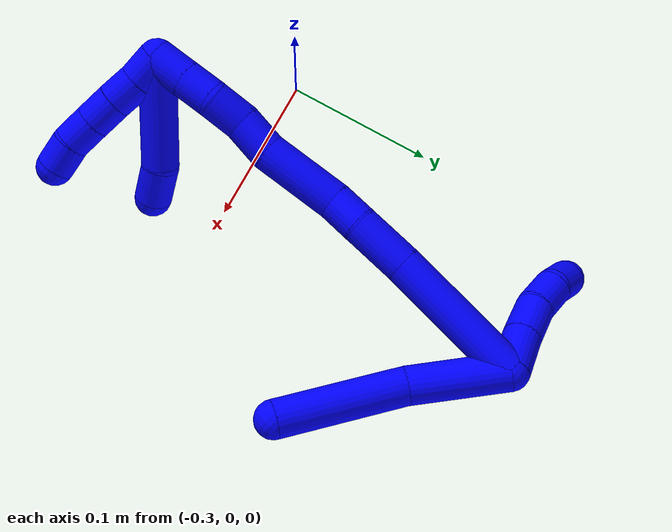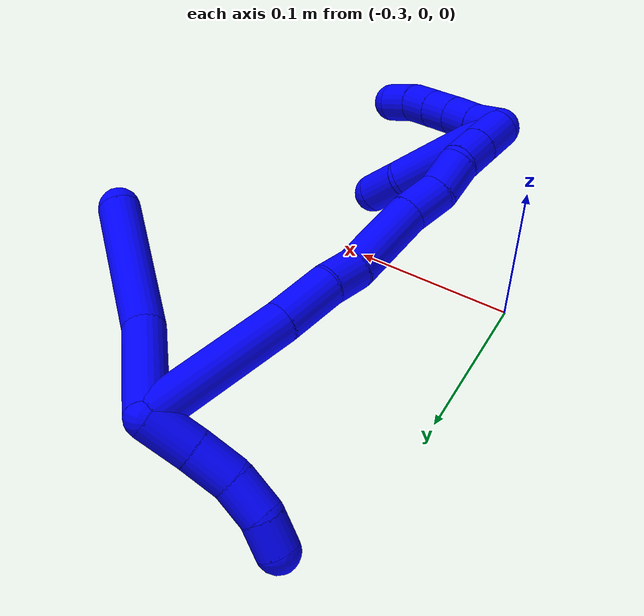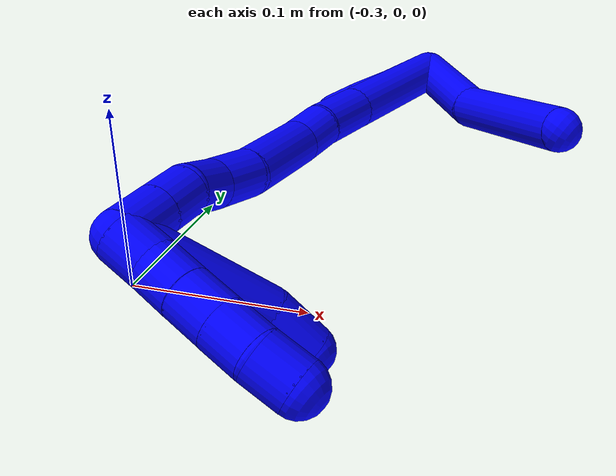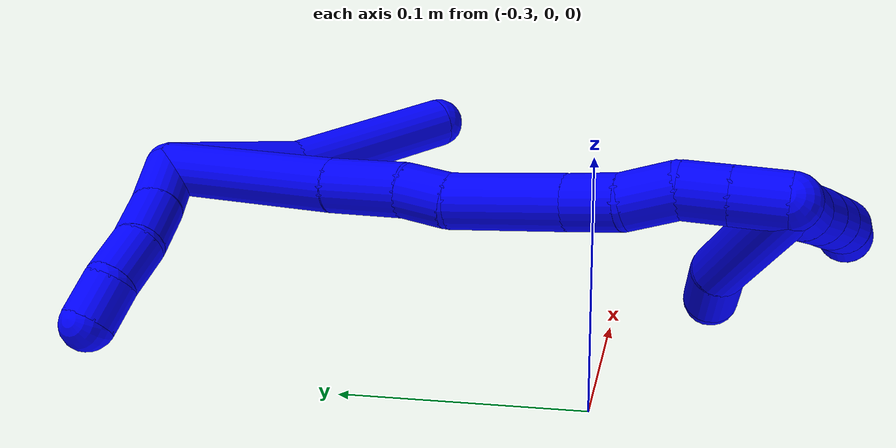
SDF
<sdf version="1.7">
 <world name="default">
  <model name="1">
   <static>0</static>
   <link name="1">
    <collision name="collision-cylinder-e_1_2_8">
     <pose>0.005035 -0.020529 -0.024422 2.44259 0.156525 0.423883</pose>
     <geometry><cylinder><radius>0.0125</radius><length>0.064598</length></cylinder></geometry>
     <surface>
      <friction><ode><mu>1.16</mu><mu2>1.16</mu2><slip1>0</slip1><slip2>0</slip2></ode></friction>
      <contact><ode><kp>1e+06</kp><kd>1</kd><max_vel>0</max_vel><min_depth>0.001</min_depth></ode></contact>
     </surface>
    </collision>
    <visual name="visual-cylinder-e_1_2_8">
     <pose>0.005035 -0.020529 -0.024422 2.44259 0.156525 0.423883</pose>
     <geometry><cylinder><radius>0.0125</radius><length>0.064598</length></cylinder></geometry>
     <material><ambient>0 0 1 1</ambient></material>
    </visual>
    <collision name="collision-cylinder-e_2_8_6">
     <pose>0.027833 -0.065414 -0.079087 2.46358 0.429019 1.10686</pose>
     <geometry><cylinder><radius>0.0125</radius><length>0.085402</length></cylinder></geometry>
     <surface>
      <friction><ode><mu>1.16</mu><mu2>1.16</mu2><slip1>0</slip1><slip2>0</slip2></ode></friction>
      <contact><ode><kp>1e+06</kp><kd>1</kd><max_vel>0</max_vel><min_depth>0.001</min_depth></ode></contact>
     </surface>
    </collision>
    <visual name="visual-cylinder-e_2_8_6">
     <pose>0.027833 -0.065414 -0.079087 2.46358 0.429019 1.10686</pose>
     <geometry><cylinder><radius>0.0125</radius><length>0.085402</length></cylinder></geometry>
     <material><ambient>0 0 1 1</ambient></material>
    </visual>
    <collision name="collision-cylinder-e_1_2_9">
     <pose>-0.012201 -0.002697 0.007627 0.33988 -0.98532 -0.183709</pose>
     <geometry><cylinder><radius>0.0125</radius><length>0.029278</length></cylinder></geometry>
     <surface>
      <friction><ode><mu>1.16</mu><mu2>1.16</mu2><slip1>0</slip1><slip2>0</slip2></ode></friction>
      <contact><ode><kp>1e+06</kp><kd>1</kd><max_vel>0</max_vel><min_depth>0.001</min_depth></ode></contact>
     </surface>
    </collision>
    <visual name="visual-cylinder-e_1_2_9">
     <pose>-0.012201 -0.002697 0.007627 0.33988 -0.98532 -0.183709</pose>
     <geometry><cylinder><radius>0.0125</radius><length>0.029278</length></cylinder></geometry>
     <material><ambient>0 0 1 1</ambient></material>
    </visual>
    <collision name="collision-cylinder-e_2_9_10">
     <pose>-0.034815 -0.00705 0.022614 0.221309 -0.943823 -0.113292</pose>
     <geometry><cylinder><radius>0.0125</radius><length>0.025718</length></cylinder></geometry>
     <surface>
      <friction><ode><mu>1.16</mu><mu2>1.16</mu2><slip1>0</slip1><slip2>0</slip2></ode></friction>
      <contact><ode><kp>1e+06</kp><kd>1</kd><max_vel>0</max_vel><min_depth>0.001</min_depth></ode></contact>
     </surface>
    </collision>
    <visual name="visual-cylinder-e_2_9_10">
     <pose>-0.034815 -0.00705 0.022614 0.221309 -0.943823 -0.113292</pose>
     <geometry><cylinder><radius>0.0125</radius><length>0.025718</length></cylinder></geometry>
     <material><ambient>0 0 1 1</ambient></material>
    </visual>
    <collision name="collision-cylinder-e_3_10_11">
     <pose>-0.055125 -0.007446 0.036558 -0.189076 -0.975412 0.10051</pose>
     <geometry><cylinder><radius>0.0125</radius><length>0.023905</length></cylinder></geometry>
     <surface>
      <friction><ode><mu>1.16</mu><mu2>1.16</mu2><slip1>0</slip1><slip2>0</slip2></ode></friction>
      <contact><ode><kp>1e+06</kp><kd>1</kd><max_vel>0</max_vel><min_depth>0.001</min_depth></ode></contact>
     </surface>
    </collision>
    <visual name="visual-cylinder-e_3_10_11">
     <pose>-0.055125 -0.007446 0.036558 -0.189076 -0.975412 0.10051</pose>
     <geometry><cylinder><radius>0.0125</radius><length>0.023905</length></cylinder></geometry>
     <material><ambient>0 0 1 1</ambient></material>
    </visual>
    <collision name="collision-cylinder-e_4_11_5">
     <pose>-0.074678 -0.003246 0.046203 -0.765155 -1.15675 0.513807</pose>
     <geometry><cylinder><radius>0.0125</radius><length>0.021098</length></cylinder></geometry>
     <surface>
      <friction><ode><mu>1.16</mu><mu2>1.16</mu2><slip1>0</slip1><slip2>0</slip2></ode></friction>
      <contact><ode><kp>1e+06</kp><kd>1</kd><max_vel>0</max_vel><min_depth>0.001</min_depth></ode></contact>
     </surface>
    </collision>
    <visual name="visual-cylinder-e_4_11_5">
     <pose>-0.074678 -0.003246 0.046203 -0.765155 -1.15675 0.513807</pose>
     <geometry><cylinder><radius>0.0125</radius><length>0.021098</length></cylinder></geometry>
     <material><ambient>0 0 1 1</ambient></material>
    </visual>
    <collision name="collision-cylinder-e_1_2_12">
     <pose>-0.009129 -0.045797 -0.000231 1.57585 -0.196749 -0.197738</pose>
     <geometry><cylinder><radius>0.0125</radius><length>0.093396</length></cylinder></geometry>
     <surface>
      <friction><ode><mu>1.16</mu><mu2>1.16</mu2><slip1>0</slip1><slip2>0</slip2></ode></friction>
      <contact><ode><kp>1e+06</kp><kd>1</kd><max_vel>0</max_vel><min_depth>0.001</min_depth></ode></contact>
     </surface>
    </collision>
    <visual name="visual-cylinder-e_1_2_12">
     <pose>-0.009129 -0.045797 -0.000231 1.57585 -0.196749 -0.197738</pose>
     <geometry><cylinder><radius>0.0125</radius><length>0.093396</length></cylinder></geometry>
     <material><ambient>0 0 1 1</ambient></material>
    </visual>
    <collision name="collision-cylinder-e_2_12_13">
     <pose>-0.021076 -0.109925 -0.001091 1.60505 -0.152502 -0.157796</pose>
     <geometry><cylinder><radius>0.0125</radius><length>0.037116</length></cylinder></geometry>
     <surface>
      <friction><ode><mu>1.16</mu><mu2>1.16</mu2><slip1>0</slip1><slip2>0</slip2></ode></friction>
      <contact><ode><kp>1e+06</kp><kd>1</kd><max_vel>0</max_vel><min_depth>0.001</min_depth></ode></contact>
     </surface>
    </collision>
    <visual name="visual-cylinder-e_2_12_13">
     <pose>-0.021076 -0.109925 -0.001091 1.60505 -0.152502 -0.157796</pose>
     <geometry><cylinder><radius>0.0125</radius><length>0.037116</length></cylinder></geometry>
     <material><ambient>0 0 1 1</ambient></material>
    </visual>
    <collision name="collision-cylinder-e_3_13_14">
     <pose>-0.027256 -0.138854 -0.002511 1.64544 -0.306241 -0.329585</pose>
     <geometry><cylinder><radius>0.0125</radius><length>0.022291</length></cylinder></geometry>
     <surface>
      <friction><ode><mu>1.16</mu><mu2>1.16</mu2><slip1>0</slip1><slip2>0</slip2></ode></friction>
      <contact><ode><kp>1e+06</kp><kd>1</kd><max_vel>0</max_vel><min_depth>0.001</min_depth></ode></contact>
     </surface>
    </collision>
    <visual name="visual-cylinder-e_3_13_14">
     <pose>-0.027256 -0.138854 -0.002511 1.64544 -0.306241 -0.329585</pose>
     <geometry><cylinder><radius>0.0125</radius><length>0.022291</length></cylinder></geometry>
     <material><ambient>0 0 1 1</ambient></material>
    </visual>
    <collision name="collision-cylinder-e_4_14_15">
     <pose>-0.032706 -0.17571 -0.006518 1.69259 -0.078862 -0.08909</pose>
     <geometry><cylinder><radius>0.0125</radius><length>0.053074</length></cylinder></geometry>
     <surface>
      <friction><ode><mu>1.16</mu><mu2>1.16</mu2><slip1>0</slip1><slip2>0</slip2></ode></friction>
      <contact><ode><kp>1e+06</kp><kd>1</kd><max_vel>0</max_vel><min_depth>0.001</min_depth></ode></contact>
     </surface>
    </collision>
    <visual name="visual-cylinder-e_4_14_15">
     <pose>-0.032706 -0.17571 -0.006518 1.69259 -0.078862 -0.08909</pose>
     <geometry><cylinder><radius>0.0125</radius><length>0.053074</length></cylinder></geometry>
     <material><ambient>0 0 1 1</ambient></material>
    </visual>
    <collision name="collision-cylinder-e_5_15_16">
     <pose>-0.036213 -0.214336 -0.008657 1.48412 -0.113587 -0.104163</pose>
     <geometry><cylinder><radius>0.0125</radius><length>0.024988</length></cylinder></geometry>
     <surface>
      <friction><ode><mu>1.16</mu><mu2>1.16</mu2><slip1>0</slip1><slip2>0</slip2></ode></friction>
      <contact><ode><kp>1e+06</kp><kd>1</kd><max_vel>0</max_vel><min_depth>0.001</min_depth></ode></contact>
     </surface>
    </collision>
    <visual name="visual-cylinder-e_5_15_16">
     <pose>-0.036213 -0.214336 -0.008657 1.48412 -0.113587 -0.104163</pose>
     <geometry><cylinder><radius>0.0125</radius><length>0.024988</length></cylinder></geometry>
     <material><ambient>0 0 1 1</ambient></material>
    </visual>
    <collision name="collision-cylinder-e_6_16_17">
     <pose>-0.036055 -0.238555 -0.00808 1.61277 0.131967 0.137609</pose>
     <geometry><cylinder><radius>0.0125</radius><length>0.023934</length></cylinder></geometry>
     <surface>
      <friction><ode><mu>1.16</mu><mu2>1.16</mu2><slip1>0</slip1><slip2>0</slip2></ode></friction>
      <contact><ode><kp>1e+06</kp><kd>1</kd><max_vel>0</max_vel><min_depth>0.001</min_depth></ode></contact>
     </surface>
    </collision>
    <visual name="visual-cylinder-e_6_16_17">
     <pose>-0.036055 -0.238555 -0.00808 1.61277 0.131967 0.137609</pose>
     <geometry><cylinder><radius>0.0125</radius><length>0.023934</length></cylinder></geometry>
     <material><ambient>0 0 1 1</ambient></material>
    </visual>
    <collision name="collision-cylinder-e_7_17_18">
     <pose>-0.036296 -0.260661 -0.010107 1.71884 -0.173457 -0.201069</pose>
     <geometry><cylinder><radius>0.0125</radius><length>0.021049</length></cylinder></geometry>
     <surface>
      <friction><ode><mu>1.16</mu><mu2>1.16</mu2><slip1>0</slip1><slip2>0</slip2></ode></friction>
      <contact><ode><kp>1e+06</kp><kd>1</kd><max_vel>0</max_vel><min_depth>0.001</min_depth></ode></contact>
     </surface>
    </collision>
    <visual name="visual-cylinder-e_7_17_18">
     <pose>-0.036296 -0.260661 -0.010107 1.71884 -0.173457 -0.201069</pose>
     <geometry><cylinder><radius>0.0125</radius><length>0.021049</length></cylinder></geometry>
     <material><ambient>0 0 1 1</ambient></material>
    </visual>
    <collision name="collision-cylinder-e_8_18_1">
     <pose>-0.040218 -0.282679 -0.013361 1.71638 -0.175263 -0.202658</pose>
     <geometry><cylinder><radius>0.0125</radius><length>0.024151</length></cylinder></geometry>
     <surface>
      <friction><ode><mu>1.16</mu><mu2>1.16</mu2><slip1>0</slip1><slip2>0</slip2></ode></friction>
      <contact><ode><kp>1e+06</kp><kd>1</kd><max_vel>0</max_vel><min_depth>0.001</min_depth></ode></contact>
     </surface>
    </collision>
    <visual name="visual-cylinder-e_8_18_1">
     <pose>-0.040218 -0.282679 -0.013361 1.71638 -0.175263 -0.202658</pose>
     <geometry><cylinder><radius>0.0125</radius><length>0.024151</length></cylinder></geometry>
     <material><ambient>0 0 1 1</ambient></material>
    </visual>
    <collision name="collision-cylinder-e_1_1_19">
     <pose>-0.041793 -0.294615 -0.02507 3.12449 0.053098 2.5184</pose>
     <geometry><cylinder><radius>0.0125</radius><length>0.02</length></cylinder></geometry>
     <surface>
      <friction><ode><mu>1.16</mu><mu2>1.16</mu2><slip1>0</slip1><slip2>0</slip2></ode></friction>
      <contact><ode><kp>1e+06</kp><kd>1</kd><max_vel>0</max_vel><min_depth>0.001</min_depth></ode></contact>
     </surface>
    </collision>
    <visual name="visual-cylinder-e_1_1_19">
     <pose>-0.041793 -0.294615 -0.02507 3.12449 0.053098 2.5184</pose>
     <geometry><cylinder><radius>0.0125</radius><length>0.02</length></cylinder></geometry>
     <material><ambient>0 0 1 1</ambient></material>
    </visual>
    <collision name="collision-cylinder-e_2_19_20">
     <pose>-0.040083 -0.296115 -0.044896 3.00735 0.118241 1.44386</pose>
     <geometry><cylinder><radius>0.0125</radius><length>0.02</length></cylinder></geometry>
     <surface>
      <friction><ode><mu>1.16</mu><mu2>1.16</mu2><slip1>0</slip1><slip2>0</slip2></ode></friction>
      <contact><ode><kp>1e+06</kp><kd>1</kd><max_vel>0</max_vel><min_depth>0.001</min_depth></ode></contact>
     </surface>
    </collision>
    <visual name="visual-cylinder-e_2_19_20">
     <pose>-0.040083 -0.296115 -0.044896 3.00735 0.118241 1.44386</pose>
     <geometry><cylinder><radius>0.0125</radius><length>0.02</length></cylinder></geometry>
     <material><ambient>0 0 1 1</ambient></material>
    </visual>
    <collision name="collision-cylinder-e_3_20_21">
     <pose>-0.037855 -0.298445 -0.064631 3.04079 0.105003 1.61165</pose>
     <geometry><cylinder><radius>0.0125</radius><length>0.02</length></cylinder></geometry>
     <surface>
      <friction><ode><mu>1.16</mu><mu2>1.16</mu2><slip1>0</slip1><slip2>0</slip2></ode></friction>
      <contact><ode><kp>1e+06</kp><kd>1</kd><max_vel>0</max_vel><min_depth>0.001</min_depth></ode></contact>
     </surface>
    </collision>
    <visual name="visual-cylinder-e_3_20_21">
     <pose>-0.037855 -0.298445 -0.064631 3.04079 0.105003 1.61165</pose>
     <geometry><cylinder><radius>0.0125</radius><length>0.02</length></cylinder></geometry>
     <material><ambient>0 0 1 1</ambient></material>
    </visual>
    <collision name="collision-cylinder-e_4_21_22">
     <pose>-0.035694 -0.300362 -0.084421 3.04923 0.111543 1.7587</pose>
     <geometry><cylinder><radius>0.0125</radius><length>0.02</length></cylinder></geometry>
     <surface>
      <friction><ode><mu>1.16</mu><mu2>1.16</mu2><slip1>0</slip1><slip2>0</slip2></ode></friction>
      <contact><ode><kp>1e+06</kp><kd>1</kd><max_vel>0</max_vel><min_depth>0.001</min_depth></ode></contact>
     </surface>
    </collision>
    <visual name="visual-cylinder-e_4_21_22">
     <pose>-0.035694 -0.300362 -0.084421 3.04923 0.111543 1.7587</pose>
     <geometry><cylinder><radius>0.0125</radius><length>0.02</length></cylinder></geometry>
     <material><ambient>0 0 1 1</ambient></material>
    </visual>
    <collision name="collision-cylinder-e_5_22_4">
     <pose>-0.034421 -0.300194 -0.104256 -3.03291 0.016013 -0.292292</pose>
     <geometry><cylinder><radius>0.0125</radius><length>0.02</length></cylinder></geometry>
     <surface>
      <friction><ode><mu>1.16</mu><mu2>1.16</mu2><slip1>0</slip1><slip2>0</slip2></ode></friction>
      <contact><ode><kp>1e+06</kp><kd>1</kd><max_vel>0</max_vel><min_depth>0.001</min_depth></ode></contact>
     </surface>
    </collision>
    <visual name="visual-cylinder-e_5_22_4">
     <pose>-0.034421 -0.300194 -0.104256 -3.03291 0.016013 -0.292292</pose>
     <geometry><cylinder><radius>0.0125</radius><length>0.02</length></cylinder></geometry>
     <material><ambient>0 0 1 1</ambient></material>
    </visual>
    <collision name="collision-cylinder-e_1_1_23">
     <pose>-0.048942 -0.271916 -0.043611 -2.47312 -0.180096 0.508752</pose>
     <geometry><cylinder><radius>0.0125</radius><length>0.073891</length></cylinder></geometry>
     <surface>
      <friction><ode><mu>1.16</mu><mu2>1.16</mu2><slip1>0</slip1><slip2>0</slip2></ode></friction>
      <contact><ode><kp>1e+06</kp><kd>1</kd><max_vel>0</max_vel><min_depth>0.001</min_depth></ode></contact>
     </surface>
    </collision>
    <visual name="visual-cylinder-e_1_1_23">
     <pose>-0.048942 -0.271916 -0.043611 -2.47312 -0.180096 0.508752</pose>
     <geometry><cylinder><radius>0.0125</radius><length>0.073891</length></cylinder></geometry>
     <material><ambient>0 0 1 1</ambient></material>
    </visual>
    <collision name="collision-cylinder-e_2_23_3">
     <pose>-0.059405 -0.244515 -0.08362 -2.74032 -0.299033 1.27505</pose>
     <geometry><cylinder><radius>0.0125</radius><length>0.026109</length></cylinder></geometry>
     <surface>
      <friction><ode><mu>1.16</mu><mu2>1.16</mu2><slip1>0</slip1><slip2>0</slip2></ode></friction>
      <contact><ode><kp>1e+06</kp><kd>1</kd><max_vel>0</max_vel><min_depth>0.001</min_depth></ode></contact>
     </surface>
    </collision>
    <visual name="visual-cylinder-e_2_23_3">
     <pose>-0.059405 -0.244515 -0.08362 -2.74032 -0.299033 1.27505</pose>
     <geometry><cylinder><radius>0.0125</radius><length>0.026109</length></cylinder></geometry>
     <material><ambient>0 0 1 1</ambient></material>
    </visual>
    <collision name="collision-sphere-3">
     <pose>-0.063251 -0.239642 -0.095104 0 -0 0</pose>
     <geometry><sphere><radius>0.0125</radius></sphere></geometry>
     <surface>
      <friction><ode><mu>1.16</mu><mu2>1.16</mu2><slip1>0</slip1><slip2>0</slip2></ode></friction>
      <contact><ode><kp>1e+06</kp><kd>1</kd><max_vel>0</max_vel><min_depth>0.001</min_depth></ode></contact>
     </surface>
    </collision>
    <visual name="visual-sphere-3">
     <pose>-0.063251 -0.239642 -0.095104 0 -0 0</pose>
     <geometry><sphere><radius>0.0125</radius></sphere></geometry>
     <material><ambient>0 0 1 1</ambient></material>
    </visual>
    <collision name="collision-sphere-23">
     <pose>-0.05556 -0.249388 -0.072135 0 -0 0</pose>
     <geometry><sphere><radius>0.0125</radius></sphere></geometry>
     <surface>
      <friction><ode><mu>1.16</mu><mu2>1.16</mu2><slip1>0</slip1><slip2>0</slip2></ode></friction>
      <contact><ode><kp>1e+06</kp><kd>1</kd><max_vel>0</max_vel><min_depth>0.001</min_depth></ode></contact>
     </surface>
    </collision>
    <visual name="visual-sphere-23">
     <pose>-0.05556 -0.249388 -0.072135 0 -0 0</pose>
     <geometry><sphere><radius>0.0125</radius></sphere></geometry>
     <material><ambient>0 0 1 1</ambient></material>
    </visual>
    <collision name="collision-sphere-4">
     <pose>-0.034261 -0.29911 -0.114196 0 -0 0</pose>
     <geometry><sphere><radius>0.0125</radius></sphere></geometry>
     <surface>
      <friction><ode><mu>1.16</mu><mu2>1.16</mu2><slip1>0</slip1><slip2>0</slip2></ode></friction>
      <contact><ode><kp>1e+06</kp><kd>1</kd><max_vel>0</max_vel><min_depth>0.001</min_depth></ode></contact>
     </surface>
    </collision>
    <visual name="visual-sphere-4">
     <pose>-0.034261 -0.29911 -0.114196 0 -0 0</pose>
     <geometry><sphere><radius>0.0125</radius></sphere></geometry>
     <material><ambient>0 0 1 1</ambient></material>
    </visual>
    <collision name="collision-sphere-22">
     <pose>-0.034581 -0.301279 -0.094316 0 -0 0</pose>
     <geometry><sphere><radius>0.0125</radius></sphere></geometry>
     <surface>
      <friction><ode><mu>1.16</mu><mu2>1.16</mu2><slip1>0</slip1><slip2>0</slip2></ode></friction>
      <contact><ode><kp>1e+06</kp><kd>1</kd><max_vel>0</max_vel><min_depth>0.001</min_depth></ode></contact>
     </surface>
    </collision>
    <visual name="visual-sphere-22">
     <pose>-0.034581 -0.301279 -0.094316 0 -0 0</pose>
     <geometry><sphere><radius>0.0125</radius></sphere></geometry>
     <material><ambient>0 0 1 1</ambient></material>
    </visual>
    <collision name="collision-sphere-21">
     <pose>-0.036807 -0.299445 -0.074525 0 -0 0</pose>
     <geometry><sphere><radius>0.0125</radius></sphere></geometry>
     <surface>
      <friction><ode><mu>1.16</mu><mu2>1.16</mu2><slip1>0</slip1><slip2>0</slip2></ode></friction>
      <contact><ode><kp>1e+06</kp><kd>1</kd><max_vel>0</max_vel><min_depth>0.001</min_depth></ode></contact>
     </surface>
    </collision>
    <visual name="visual-sphere-21">
     <pose>-0.036807 -0.299445 -0.074525 0 -0 0</pose>
     <geometry><sphere><radius>0.0125</radius></sphere></geometry>
     <material><ambient>0 0 1 1</ambient></material>
    </visual>
    <collision name="collision-sphere-20">
     <pose>-0.038903 -0.297444 -0.054737 0 -0 0</pose>
     <geometry><sphere><radius>0.0125</radius></sphere></geometry>
     <surface>
      <friction><ode><mu>1.16</mu><mu2>1.16</mu2><slip1>0</slip1><slip2>0</slip2></ode></friction>
      <contact><ode><kp>1e+06</kp><kd>1</kd><max_vel>0</max_vel><min_depth>0.001</min_depth></ode></contact>
     </surface>
    </collision>
    <visual name="visual-sphere-20">
     <pose>-0.038903 -0.297444 -0.054737 0 -0 0</pose>
     <geometry><sphere><radius>0.0125</radius></sphere></geometry>
     <material><ambient>0 0 1 1</ambient></material>
    </visual>
    <collision name="collision-sphere-11">
     <pose>-0.065021 -0.006186 0.043142 0 -0 0</pose>
     <geometry><sphere><radius>0.0125</radius></sphere></geometry>
     <surface>
      <friction><ode><mu>1.16</mu><mu2>1.16</mu2><slip1>0</slip1><slip2>0</slip2></ode></friction>
      <contact><ode><kp>1e+06</kp><kd>1</kd><max_vel>0</max_vel><min_depth>0.001</min_depth></ode></contact>
     </surface>
    </collision>
    <visual name="visual-sphere-11">
     <pose>-0.065021 -0.006186 0.043142 0 -0 0</pose>
     <geometry><sphere><radius>0.0125</radius></sphere></geometry>
     <material><ambient>0 0 1 1</ambient></material>
    </visual>
    <collision name="collision-sphere-10">
     <pose>-0.045228 -0.008706 0.029974 0 -0 0</pose>
     <geometry><sphere><radius>0.0125</radius></sphere></geometry>
     <surface>
      <friction><ode><mu>1.16</mu><mu2>1.16</mu2><slip1>0</slip1><slip2>0</slip2></ode></friction>
      <contact><ode><kp>1e+06</kp><kd>1</kd><max_vel>0</max_vel><min_depth>0.001</min_depth></ode></contact>
     </surface>
    </collision>
    <visual name="visual-sphere-10">
     <pose>-0.045228 -0.008706 0.029974 0 -0 0</pose>
     <geometry><sphere><radius>0.0125</radius></sphere></geometry>
     <material><ambient>0 0 1 1</ambient></material>
    </visual>
    <collision name="collision-sphere-6">
     <pose>0.045595 -0.089771 -0.109329 0 -0 0</pose>
     <geometry><sphere><radius>0.0125</radius></sphere></geometry>
     <surface>
      <friction><ode><mu>1.16</mu><mu2>1.16</mu2><slip1>0</slip1><slip2>0</slip2></ode></friction>
      <contact><ode><kp>1e+06</kp><kd>1</kd><max_vel>0</max_vel><min_depth>0.001</min_depth></ode></contact>
     </surface>
    </collision>
    <visual name="visual-sphere-6">
     <pose>0.045595 -0.089771 -0.109329 0 -0 0</pose>
     <geometry><sphere><radius>0.0125</radius></sphere></geometry>
     <material><ambient>0 0 1 1</ambient></material>
    </visual>
    <collision name="collision-sphere-9">
     <pose>-0.024402 -0.005394 0.015254 0 -0 0</pose>
     <geometry><sphere><radius>0.0125</radius></sphere></geometry>
     <surface>
      <friction><ode><mu>1.16</mu><mu2>1.16</mu2><slip1>0</slip1><slip2>0</slip2></ode></friction>
      <contact><ode><kp>1e+06</kp><kd>1</kd><max_vel>0</max_vel><min_depth>0.001</min_depth></ode></contact>
     </surface>
    </collision>
    <visual name="visual-sphere-9">
     <pose>-0.024402 -0.005394 0.015254 0 -0 0</pose>
     <geometry><sphere><radius>0.0125</radius></sphere></geometry>
     <material><ambient>0 0 1 1</ambient></material>
    </visual>
    <collision name="collision-sphere-2">
     <geometry><sphere><radius>0.0125</radius></sphere></geometry>
     <surface>
      <friction><ode><mu>1.16</mu><mu2>1.16</mu2><slip1>0</slip1><slip2>0</slip2></ode></friction>
      <contact><ode><kp>1e+06</kp><kd>1</kd><max_vel>0</max_vel><min_depth>0.001</min_depth></ode></contact>
     </surface>
    </collision>
    <visual name="visual-sphere-2">
     <geometry><sphere><radius>0.0125</radius></sphere></geometry>
     <material><ambient>0 0 1 1</ambient></material>
    </visual>
    <collision name="collision-sphere-19">
     <pose>-0.041263 -0.294786 -0.035055 0 -0 0</pose>
     <geometry><sphere><radius>0.0125</radius></sphere></geometry>
     <surface>
      <friction><ode><mu>1.16</mu><mu2>1.16</mu2><slip1>0</slip1><slip2>0</slip2></ode></friction>
      <contact><ode><kp>1e+06</kp><kd>1</kd><max_vel>0</max_vel><min_depth>0.001</min_depth></ode></contact>
     </surface>
    </collision>
    <visual name="visual-sphere-19">
     <pose>-0.041263 -0.294786 -0.035055 0 -0 0</pose>
     <geometry><sphere><radius>0.0125</radius></sphere></geometry>
     <material><ambient>0 0 1 1</ambient></material>
    </visual>
    <collision name="collision-sphere-8">
     <pose>0.01007 -0.041058 -0.048844 0 -0 0</pose>
     <geometry><sphere><radius>0.0125</radius></sphere></geometry>
     <surface>
      <friction><ode><mu>1.16</mu><mu2>1.16</mu2><slip1>0</slip1><slip2>0</slip2></ode></friction>
      <contact><ode><kp>1e+06</kp><kd>1</kd><max_vel>0</max_vel><min_depth>0.001</min_depth></ode></contact>
     </surface>
    </collision>
    <visual name="visual-sphere-8">
     <pose>0.01007 -0.041058 -0.048844 0 -0 0</pose>
     <geometry><sphere><radius>0.0125</radius></sphere></geometry>
     <material><ambient>0 0 1 1</ambient></material>
    </visual>
    <collision name="collision-sphere-5">
     <pose>-0.084336 -0.000307 0.049264 0 -0 0</pose>
     <geometry><sphere><radius>0.0125</radius></sphere></geometry>
     <surface>
      <friction><ode><mu>1.16</mu><mu2>1.16</mu2><slip1>0</slip1><slip2>0</slip2></ode></friction>
      <contact><ode><kp>1e+06</kp><kd>1</kd><max_vel>0</max_vel><min_depth>0.001</min_depth></ode></contact>
     </surface>
    </collision>
    <visual name="visual-sphere-5">
     <pose>-0.084336 -0.000307 0.049264 0 -0 0</pose>
     <geometry><sphere><radius>0.0125</radius></sphere></geometry>
     <material><ambient>0 0 1 1</ambient></material>
    </visual>
    <collision name="collision-sphere-12">
     <pose>-0.018257 -0.091593 -0.000462 0 -0 0</pose>
     <geometry><sphere><radius>0.0125</radius></sphere></geometry>
     <surface>
      <friction><ode><mu>1.16</mu><mu2>1.16</mu2><slip1>0</slip1><slip2>0</slip2></ode></friction>
      <contact><ode><kp>1e+06</kp><kd>1</kd><max_vel>0</max_vel><min_depth>0.001</min_depth></ode></contact>
     </surface>
    </collision>
    <visual name="visual-sphere-12">
     <pose>-0.018257 -0.091593 -0.000462 0 -0 0</pose>
     <geometry><sphere><radius>0.0125</radius></sphere></geometry>
     <material><ambient>0 0 1 1</ambient></material>
    </visual>
    <collision name="collision-sphere-13">
     <pose>-0.023896 -0.128257 -0.001719 0 -0 0</pose>
     <geometry><sphere><radius>0.0125</radius></sphere></geometry>
     <surface>
      <friction><ode><mu>1.16</mu><mu2>1.16</mu2><slip1>0</slip1><slip2>0</slip2></ode></friction>
      <contact><ode><kp>1e+06</kp><kd>1</kd><max_vel>0</max_vel><min_depth>0.001</min_depth></ode></contact>
     </surface>
    </collision>
    <visual name="visual-sphere-13">
     <pose>-0.023896 -0.128257 -0.001719 0 -0 0</pose>
     <geometry><sphere><radius>0.0125</radius></sphere></geometry>
     <material><ambient>0 0 1 1</ambient></material>
    </visual>
    <collision name="collision-sphere-14">
     <pose>-0.030616 -0.149451 -0.003304 0 -0 0</pose>
     <geometry><sphere><radius>0.0125</radius></sphere></geometry>
     <surface>
      <friction><ode><mu>1.16</mu><mu2>1.16</mu2><slip1>0</slip1><slip2>0</slip2></ode></friction>
      <contact><ode><kp>1e+06</kp><kd>1</kd><max_vel>0</max_vel><min_depth>0.001</min_depth></ode></contact>
     </surface>
    </collision>
    <visual name="visual-sphere-14">
     <pose>-0.030616 -0.149451 -0.003304 0 -0 0</pose>
     <geometry><sphere><radius>0.0125</radius></sphere></geometry>
     <material><ambient>0 0 1 1</ambient></material>
    </visual>
    <collision name="collision-sphere-15">
     <pose>-0.034797 -0.201969 -0.009732 0 -0 0</pose>
     <geometry><sphere><radius>0.0125</radius></sphere></geometry>
     <surface>
      <friction><ode><mu>1.16</mu><mu2>1.16</mu2><slip1>0</slip1><slip2>0</slip2></ode></friction>
      <contact><ode><kp>1e+06</kp><kd>1</kd><max_vel>0</max_vel><min_depth>0.001</min_depth></ode></contact>
     </surface>
    </collision>
    <visual name="visual-sphere-15">
     <pose>-0.034797 -0.201969 -0.009732 0 -0 0</pose>
     <geometry><sphere><radius>0.0125</radius></sphere></geometry>
     <material><ambient>0 0 1 1</ambient></material>
    </visual>
    <collision name="collision-sphere-16">
     <pose>-0.037629 -0.226703 -0.007582 0 -0 0</pose>
     <geometry><sphere><radius>0.0125</radius></sphere></geometry>
     <surface>
      <friction><ode><mu>1.16</mu><mu2>1.16</mu2><slip1>0</slip1><slip2>0</slip2></ode></friction>
      <contact><ode><kp>1e+06</kp><kd>1</kd><max_vel>0</max_vel><min_depth>0.001</min_depth></ode></contact>
     </surface>
    </collision>
    <visual name="visual-sphere-16">
     <pose>-0.037629 -0.226703 -0.007582 0 -0 0</pose>
     <geometry><sphere><radius>0.0125</radius></sphere></geometry>
     <material><ambient>0 0 1 1</ambient></material>
    </visual>
    <collision name="collision-sphere-17">
     <pose>-0.03448 -0.250408 -0.008578 0 -0 0</pose>
     <geometry><sphere><radius>0.0125</radius></sphere></geometry>
     <surface>
      <friction><ode><mu>1.16</mu><mu2>1.16</mu2><slip1>0</slip1><slip2>0</slip2></ode></friction>
      <contact><ode><kp>1e+06</kp><kd>1</kd><max_vel>0</max_vel><min_depth>0.001</min_depth></ode></contact>
     </surface>
    </collision>
    <visual name="visual-sphere-17">
     <pose>-0.03448 -0.250408 -0.008578 0 -0 0</pose>
     <geometry><sphere><radius>0.0125</radius></sphere></geometry>
     <material><ambient>0 0 1 1</ambient></material>
    </visual>
    <collision name="collision-sphere-18">
     <pose>-0.038113 -0.270914 -0.011636 0 -0 0</pose>
     <geometry><sphere><radius>0.0125</radius></sphere></geometry>
     <surface>
      <friction><ode><mu>1.16</mu><mu2>1.16</mu2><slip1>0</slip1><slip2>0</slip2></ode></friction>
      <contact><ode><kp>1e+06</kp><kd>1</kd><max_vel>0</max_vel><min_depth>0.001</min_depth></ode></contact>
     </surface>
    </collision>
    <visual name="visual-sphere-18">
     <pose>-0.038113 -0.270914 -0.011636 0 -0 0</pose>
     <geometry><sphere><radius>0.0125</radius></sphere></geometry>
     <material><ambient>0 0 1 1</ambient></material>
    </visual>
    <collision name="collision-sphere-1">
     <pose>-0.042324 -0.294444 -0.015086 0 -0 0</pose>
     <geometry><sphere><radius>0.0125</radius></sphere></geometry>
     <surface>
      <friction><ode><mu>1.16</mu><mu2>1.16</mu2><slip1>0</slip1><slip2>0</slip2></ode></friction>
      <contact><ode><kp>1e+06</kp><kd>1</kd><max_vel>0</max_vel><min_depth>0.001</min_depth></ode></contact>
     </surface>
    </collision>
    <visual name="visual-sphere-1">
     <pose>-0.042324 -0.294444 -0.015086 0 -0 0</pose>
     <geometry><sphere><radius>0.0125</radius></sphere></geometry>
     <material><ambient>0 0 1 1</ambient></material>
    </visual>
    <inertial>
     <pose>-0.023853 -0.143797 -0.025278 0 -0 0</pose>
     <mass>0.75</mass>
     <inertia><ixx>0.000235</ixx><ixy>0</ixy><ixz>0</ixz><iyy>-0</iyy><iyz>0</iyz><izz>0.00011</izz></inertia>
    </inertial>
   </link>
   <pose>-0.186376 0.215515 0.063844 -0.40377 -1.0722 0.150823</pose>
  </model>
 </world>
</sdf>
